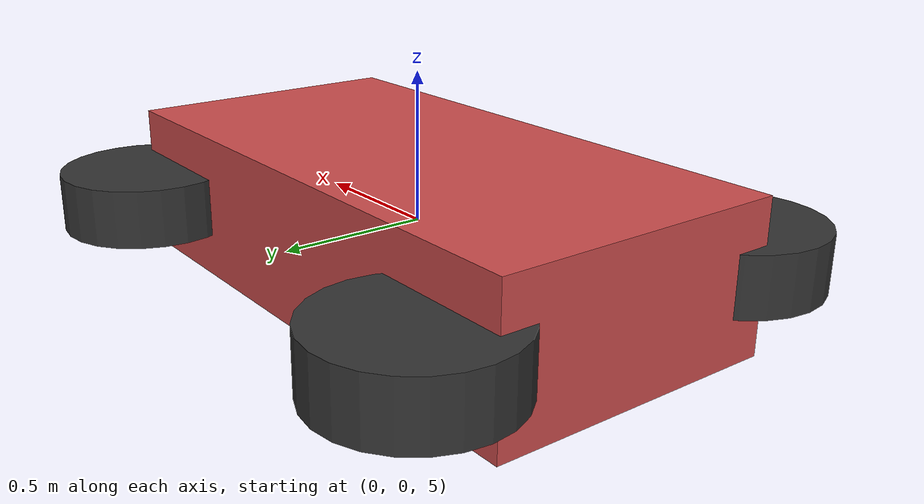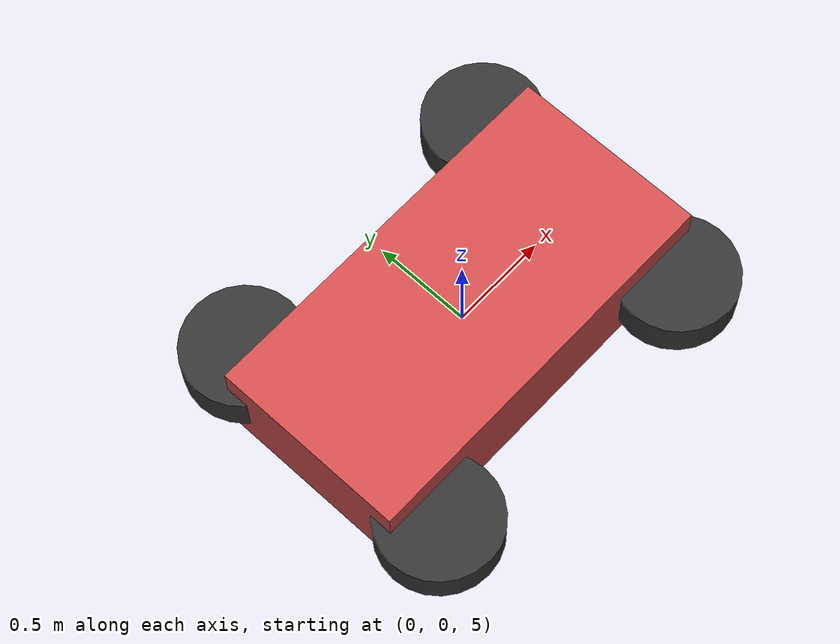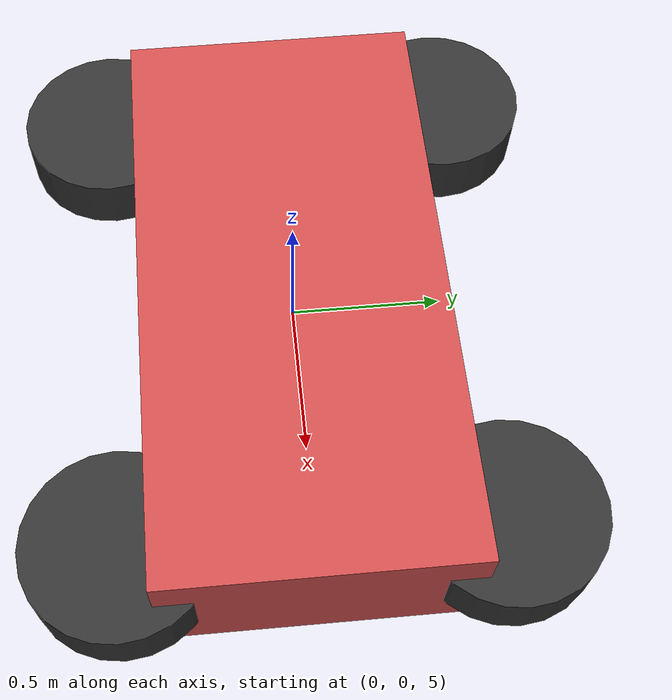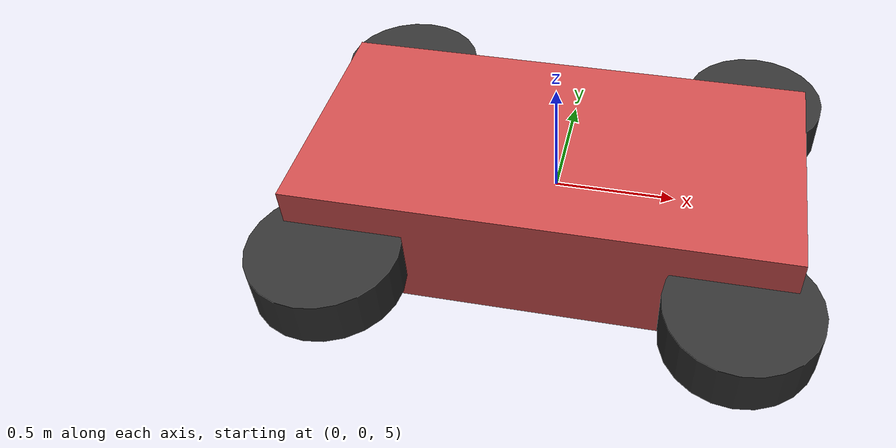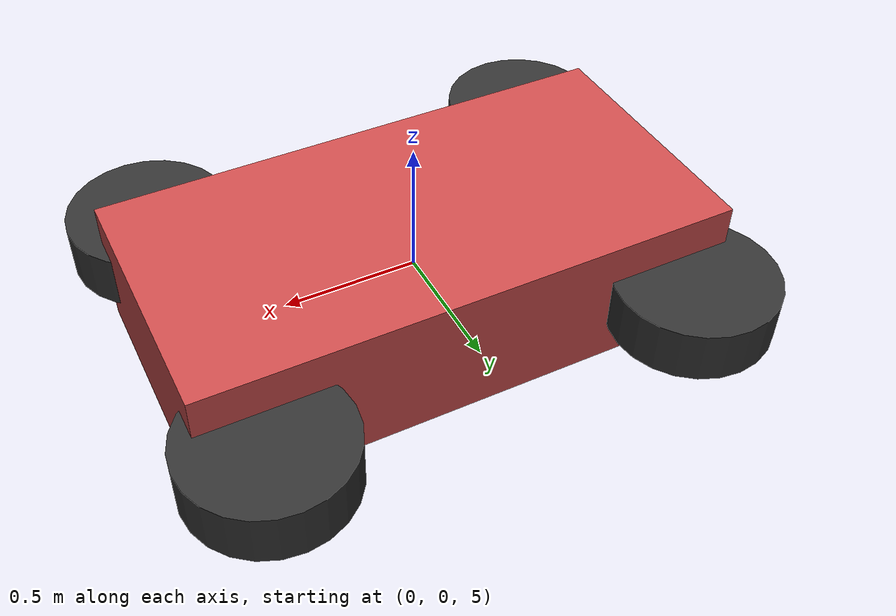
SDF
<?xml version="1.0" ?>
<sdf version="1.6">
  <model name="mars_rover">
    <pose>0 0 5 0 0 0</pose>
    <static>false</static>
    <link name="base_link">
      <pose>0 0 0 0 0 0</pose>
      <inertial>
        <mass>100</mass>
        <inertia>
          <ixx>10</ixx>
          <ixy>0</ixy>
          <ixz>0</ixz>
          <iyy>10</iyy>
          <iyz>0</iyz>
          <izz>10</izz>
        </inertia>
      </inertial>
      <collision name="base_collision">
        <geometry>
          <box>
            <size>2 1 0.5</size>
          </box>
        </geometry>
      </collision>
      <visual name="base_visual">
        <geometry>
          <box>
            <size>2 1 0.5</size>
          </box>
        </geometry>
        <material>
          <ambient>0.8 0.3 0.3 1</ambient>
          <diffuse>0.8 0.3 0.3 1</diffuse>
          <specular>0.1 0.1 0.1 1</specular>
        </material>
      </visual>
    </link>

    <!-- Wheels -->
    <model name="wheel_front_left">
      <pose>-0.8 0.6 0 0 0 0</pose>
      <link name="wheel_link">
        <inertial>
          <mass>5</mass>
          <inertia>
            <ixx>0.1</ixx>
            <ixy>0</ixy>
            <ixz>0</ixz>
            <iyy>0.1</iyy>
            <iyz>0</iyz>
            <izz>0.1</izz>
          </inertia>
        </inertial>
        <collision name="wheel_collision">
          <geometry>
            <cylinder>
              <radius>0.3</radius>
              <length>0.2</length>
            </cylinder>
          </geometry>
        </collision>
        <visual name="wheel_visual">
          <geometry>
            <cylinder>
              <radius>0.3</radius>
              <length>0.2</length>
            </cylinder>
          </geometry>
          <material>
            <ambient>0.2 0.2 0.2 1</ambient>
            <diffuse>0.2 0.2 0.2 1</diffuse>
            <specular>0.1 0.1 0.1 1</specular>
          </material>
        </visual>
      </link>
    </model>

    <model name="wheel_front_right">
      <pose>-0.8 -0.6 0 0 0 0</pose>
      <link name="wheel_link">
        <inertial>
          <mass>5</mass>
          <inertia>
            <ixx>0.1</ixx>
            <ixy>0</ixy>
            <ixz>0</ixz>
            <iyy>0.1</iyy>
            <iyz>0</iyz>
            <izz>0.1</izz>
          </inertia>
        </inertial>
        <collision name="wheel_collision">
          <geometry>
            <cylinder>
              <radius>0.3</radius>
              <length>0.2</length>
            </cylinder>
          </geometry>
        </collision>
        <visual name="wheel_visual">
          <geometry>
            <cylinder>
              <radius>0.3</radius>
              <length>0.2</length>
            </cylinder>
          </geometry>
          <material>
            <ambient>0.2 0.2 0.2 1</ambient>
            <diffuse>0.2 0.2 0.2 1</diffuse>
            <specular>0.1 0.1 0.1 1</specular>
          </material>
        </visual>
      </link>
    </model>

    <model name="wheel_rear_left">
      <pose>0.8 0.6 0 0 0 0</pose>
      <link name="wheel_link">
        <inertial>
          <mass>5</mass>
          <inertia>
            <ixx>0.1</ixx>
            <ixy>0</ixy>
            <ixz>0</ixz>
            <iyy>0.1</iyy>
            <iyz>0</iyz>
            <izz>0.1</izz>
          </inertia>
        </inertial>
        <collision name="wheel_collision">
          <geometry>
            <cylinder>
              <radius>0.3</radius>
              <length>0.2</length>
            </cylinder>
          </geometry>
        </collision>
        <visual name="wheel_visual">
          <geometry>
            <cylinder>
              <radius>0.3</radius>
              <length>0.2</length>
            </cylinder>
          </geometry>
          <material>
            <ambient>0.2 0.2 0.2 1</ambient>
            <diffuse>0.2 0.2 0.2 1</diffuse>
            <specular>0.1 0.1 0.1 1</specular>
          </material>
        </visual>
      </link>
    </model>

    <model name="wheel_rear_right">
      <pose>0.8 -0.6 0 0 0 0</pose>
      <link name="wheel_link">
        <inertial>
          <mass>5</mass>
          <inertia>
            <ixx>0.1</ixx>
            <ixy>0</ixy>
            <ixz>0</ixz>
            <iyy>0.1</iyy>
            <iyz>0</iyz>
            <izz>0.1</izz>
          </inertia>
        </inertial>
        <collision name="wheel_collision">
          <geometry>
            <cylinder>
              <radius>0.3</radius>
              <length>0.2</length>
            </cylinder>
          </geometry>
        </collision>
        <visual name="wheel_visual">
          <geometry>
            <cylinder>
              <radius>0.3</radius>
              <length>0.2</length>
            </cylinder>
          </geometry>
          <material>
            <ambient>0.2 0.2 0.2 1</ambient>
            <diffuse>0.2 0.2 0.2 1</diffuse>
            <specular>0.1 0.1 0.1 1</specular>
          </material>
        </visual>
      </link>
    </model>
  </model>
</sdf>
